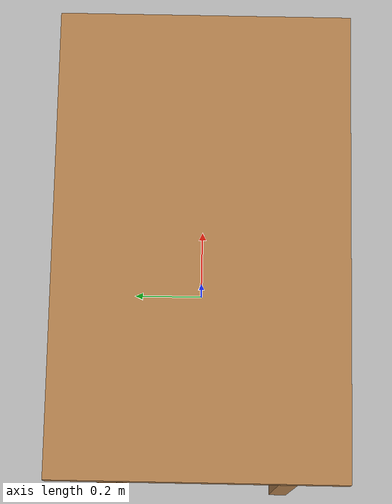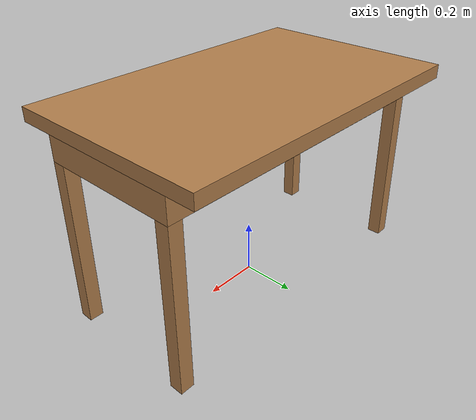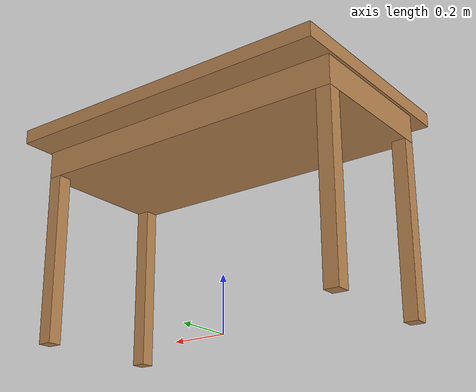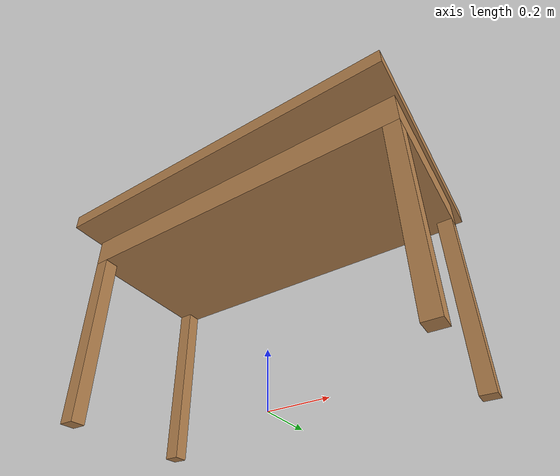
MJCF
<mujoco model="table">
    <asset>
        <texture name="table_texture" type="cube" height="1" width="1" file="textures/wood1.png" />
        <material name="table_material" texture="table_texture" rgba="1 1 1 1" shininess="0.2" reflectance="0.3" texuniform="false" />
    </asset>

    <default>
        <default class="table_viz">
            <geom group="0" contype="0" conaffinity="0" type="mesh" material="table_material" />
        </default>

        <default class="table">
            <geom group="1" contype="1" conaffinity="1" rgba="1 1 1 1" />
        </default>
   </default>

    <worldbody>
        <body name="table_body" pos="0 0 0" childclass="table">
            <geom class="table_viz" type="box" size=".6 .375 .025" pos="0 0 0.735" />
            <geom class="table_viz" type="box" size="0.59 0.26 .05" pos="0 0 0.66" />
            <geom class="table_viz" type="box" size="0.025 0.025 0.305" pos="-0.565 0.235 0.305" />
            <geom class="table_viz" type="box" size="0.025 0.025 0.305" pos="-0.565 -0.235 0.305" />
            <geom class="table_viz" type="box" size="0.025 0.025 0.305" pos="0.565 0.235 0.305" />
            <geom class="table_viz" type="box" size="0.025 0.025 0.305" pos="0.565 -0.235 0.305" />

            <geom type="box" size=".6 .375 .025" pos="0 0 0.735" mass="40" />
            <geom type="box" size="0.59 0.26 .05" pos="0 0 0.66" />
            <geom type="box" size="0.025 0.025 0.305" pos="-0.565 0.235 0.305" />
            <geom type="box" size="0.025 0.025 0.305" pos="-0.565 -0.235 0.305" />
            <geom type="box" size="0.025 0.025 0.305" pos="0.565 0.235 0.305" />
            <geom type="box" size="0.025 0.025 0.305" pos="0.565 -0.235 0.305" />
        </body>
    </worldbody>

</mujoco>
